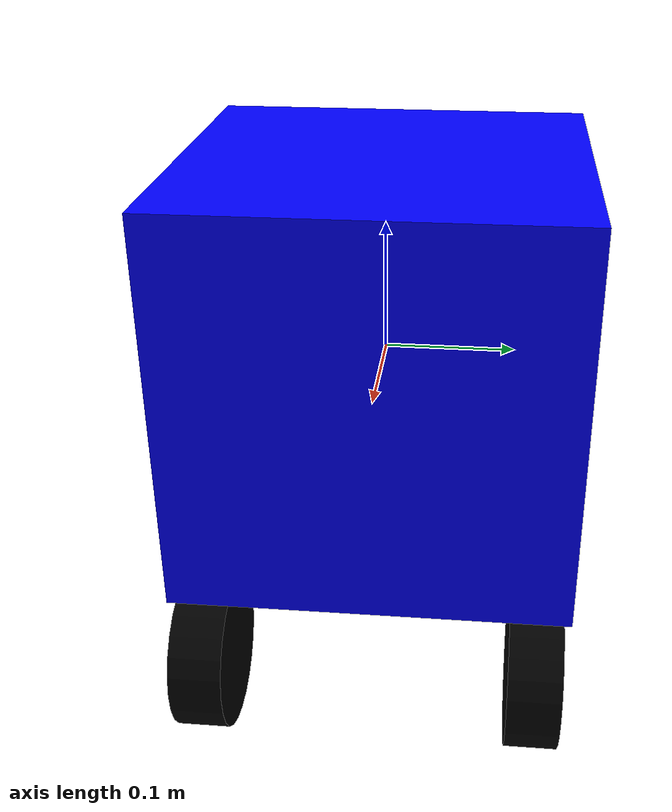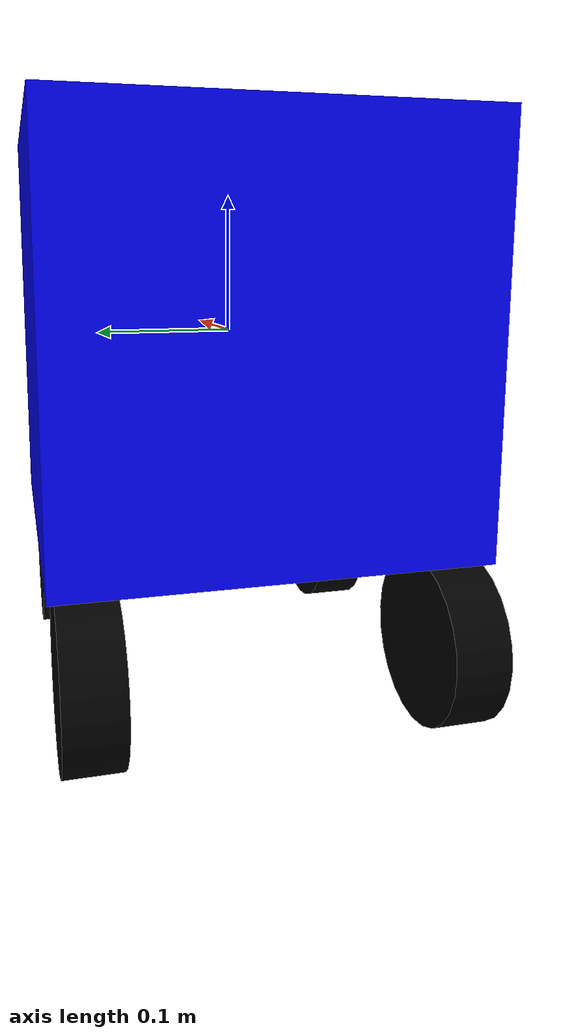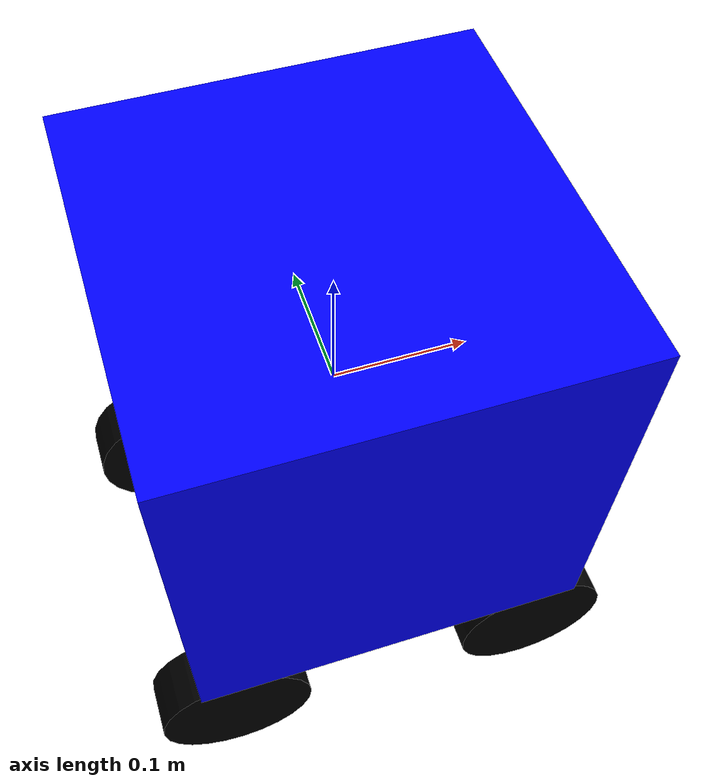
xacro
<?xml version="1.0"?>
<robot xmlns:xacro="http://www.ros.org/wiki/xacro" name="zpm_robot">

  <!-- Drone properties -->
  <xacro:property name="body_size" value="0.3"/>  <!-- Cube body side length (m) -->
  <xacro:property name="wheel_radius" value="0.06"/>  <!-- Wheel radius (m) -->
  <xacro:property name="wheel_width" value="0.04"/>  <!-- Wheel width (m) -->
  <xacro:property name="wheel_spacing" value="0.25"/>  <!-- Distance from center to wheel (m) -->

  <!-- Material definitions -->
  <material name="blue">
    <color rgba="0 0 1 1"/>
  </material>
  <material name="black">
    <color rgba="0 0 0 1"/>
  </material>
  <material name="grey">
    <color rgba="0.7 0.7 0.7 1"/>
  </material>

  <!-- Main body (cube) -->
  <link name="base_link">
    <visual>
      <origin xyz="0 0 0" rpy="0 0 0"/>
      <geometry>
        <box size="${body_size} ${body_size} ${body_size}"/>
      </geometry>
      <material name="blue"/>
    </visual>
    <collision>
      <origin xyz="0 0 0" rpy="0 0 0"/>
      <geometry>
        <box size="${body_size} ${body_size} ${body_size}"/>
      </geometry>
    </collision>
    <inertial>
      <mass value="2.0"/>
      <inertia ixx="0.015" ixy="0" ixz="0" iyy="0.015" iyz="0" izz="0.015"/>
    </inertial>
  </link>

  <!-- Front left wheel -->
  <link name="front_left_wheel">
    <visual>
      <origin xyz="0 0 0" rpy="1.5708 0 0"/>
      <geometry>
        <cylinder radius="${wheel_radius}" length="${wheel_width}"/>
      </geometry>
      <material name="black"/>
    </visual>
    <collision>
      <origin xyz="0 0 0" rpy="1.5708 0 0"/>
      <geometry>
        <cylinder radius="${wheel_radius}" length="${wheel_width}"/>
      </geometry>
    </collision>
    <inertial>
      <mass value="0.2"/>
      <inertia ixx="0.0006" ixy="0" ixz="0" iyy="0.0006" iyz="0" izz="0.0012"/>
    </inertial>
  </link>

  <joint name="front_left_wheel_joint" type="continuous">
    <parent link="base_link"/>
    <child link="front_left_wheel"/>
    <origin xyz="${wheel_spacing/2} ${wheel_spacing/2} ${-body_size/2 - wheel_radius}" rpy="0 0 0"/>
    <axis xyz="0 1 0"/>
  </joint>

  <!-- Front right wheel -->
  <link name="front_right_wheel">
    <visual>
      <origin xyz="0 0 0" rpy="1.5708 0 0"/>
      <geometry>
        <cylinder radius="${wheel_radius}" length="${wheel_width}"/>
      </geometry>
      <material name="black"/>
    </visual>
    <collision>
      <origin xyz="0 0 0" rpy="1.5708 0 0"/>
      <geometry>
        <cylinder radius="${wheel_radius}" length="${wheel_width}"/>
      </geometry>
    </collision>
    <inertial>
      <mass value="0.2"/>
      <inertia ixx="0.0006" ixy="0" ixz="0" iyy="0.0006" iyz="0" izz="0.0012"/>
    </inertial>
  </link>

  <joint name="front_right_wheel_joint" type="continuous">
    <parent link="base_link"/>
    <child link="front_right_wheel"/>
    <origin xyz="${wheel_spacing/2} ${-wheel_spacing/2} ${-body_size/2 - wheel_radius}" rpy="0 0 0"/>
    <axis xyz="0 1 0"/>
  </joint>

  <!-- Rear left wheel -->
  <link name="rear_left_wheel">
    <visual>
      <origin xyz="0 0 0" rpy="1.5708 0 0"/>
      <geometry>
        <cylinder radius="${wheel_radius}" length="${wheel_width}"/>
      </geometry>
      <material name="black"/>
    </visual>
    <collision>
      <origin xyz="0 0 0" rpy="1.5708 0 0"/>
      <geometry>
        <cylinder radius="${wheel_radius}" length="${wheel_width}"/>
      </geometry>
    </collision>
    <inertial>
      <mass value="0.2"/>
      <inertia ixx="0.0006" ixy="0" ixz="0" iyy="0.0006" iyz="0" izz="0.0012"/>
    </inertial>
  </link>

  <joint name="rear_left_wheel_joint" type="continuous">
    <parent link="base_link"/>
    <child link="rear_left_wheel"/>
    <origin xyz="${-wheel_spacing/2} ${wheel_spacing/2} ${-body_size/2 - wheel_radius}" rpy="0 0 0"/>
    <axis xyz="0 1 0"/>
  </joint>

  <!-- Rear right wheel -->
  <link name="rear_right_wheel">
    <visual>
      <origin xyz="0 0 0" rpy="1.5708 0 0"/>
      <geometry>
        <cylinder radius="${wheel_radius}" length="${wheel_width}"/>
      </geometry>
      <material name="black"/>
    </visual>
    <collision>
      <origin xyz="0 0 0" rpy="1.5708 0 0"/>
      <geometry>
        <cylinder radius="${wheel_radius}" length="${wheel_width}"/>
      </geometry>
    </collision>
    <inertial>
      <mass value="0.2"/>
      <inertia ixx="0.0006" ixy="0" ixz="0" iyy="0.0006" iyz="0" izz="0.0012"/>
    </inertial>
  </link>

  <joint name="rear_right_wheel_joint" type="continuous">
    <parent link="base_link"/>
    <child link="rear_right_wheel"/>
    <origin xyz="${-wheel_spacing/2} ${-wheel_spacing/2} ${-body_size/2 - wheel_radius}" rpy="0 0 0"/>
    <axis xyz="0 1 0"/>
  </joint>

  <!-- Gazebo plugins for differential drive (assuming 4-wheel drive) -->
  <gazebo>
    <plugin name="differential_drive_controller" filename="libgazebo_ros_diff_drive.so">
      <ros>
        <namespace>/tuna</namespace>
      </ros>
      <wheel_separation>${wheel_spacing}</wheel_separation>
      <wheel_diameter>${2*wheel_radius}</wheel_diameter>
      <max_wheel_torque>20</max_wheel_torque>
      <max_wheel_acceleration>1.0</max_wheel_acceleration>
      <command_topic>cmd_vel</command_topic>
      <odometry_frame>odom</odometry_frame>
      <odometry_topic>odom</odometry_topic>
      <publish_odom>true</publish_odom>
      <publish_odom_tf>true</publish_odom_tf>
      <publish_wheel_tf>true</publish_wheel_tf>
      <robot_base_frame>base_link</robot_base_frame>
      <update_rate>100</update_rate>
    </plugin>

    <plugin name="ground_truth_odom" filename="libgazebo_ros_p3d.so">
      <ros>
        <namespace>/tuna</namespace>
      </ros>
      <update_rate>30</update_rate>
      <body_name>base_link</body_name>
      <topic_name>ground_truth/odom</topic_name>
      <frame_name>map</frame_name>
      <xyz_offset>0 0 0</xyz_offset>
      <rpy_offset>0 0 0</rpy_offset>
    </plugin>
  </gazebo>

  <!-- Color for Gazebo -->
  <gazebo reference="base_link">
    <material>Gazebo/Blue</material>
  </gazebo>

  <gazebo reference="front_left_wheel">
    <material>Gazebo/Black</material>
  </gazebo>

  <gazebo reference="front_right_wheel">
    <material>Gazebo/Black</material>
  </gazebo>

  <gazebo reference="rear_left_wheel">
    <material>Gazebo/Black</material>
  </gazebo>

  <gazebo reference="rear_right_wheel">
    <material>Gazebo/Black</material>
  </gazebo>

</robot>
